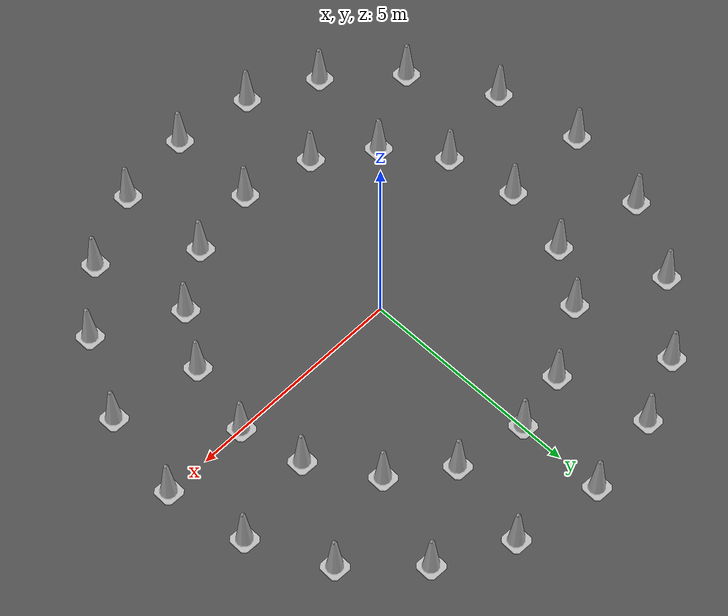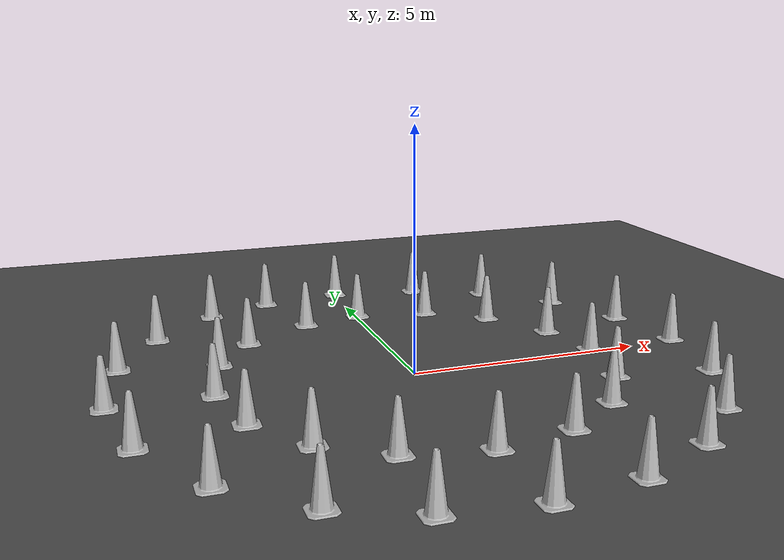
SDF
<sdf version="1.7">
 <world name="default">
  <light name="sun" type="directional">
   <pose>0 0 10 0 -0 0</pose>
   <diffuse>0.8 0.8 0.8 1</diffuse>
   <specular>0.2 0.2 0.2 1</specular>
   <attenuation>
    <range>1000</range>
    <constant>0.9</constant>
    <linear>0.01</linear>
    <quadratic>0.001</quadratic>
   </attenuation>
   <direction>-0.5 0.1 -0.9</direction>
   <spot><inner_angle>0</inner_angle><outer_angle>0</outer_angle><falloff>0</falloff></spot>
  </light>
  <model name="ground_plane">
   <static>1</static>
   <link name="link">
    <collision name="collision">
     <geometry><plane><normal>0 0 1</normal><size>100 100</size></plane></geometry>
     <surface><friction><ode><mu>100</mu><mu2>50</mu2></ode></friction></surface>
    </collision>
    <visual name="visual">
     <cast_shadows>0</cast_shadows>
     <geometry><plane><normal>0 0 1</normal><size>100 100</size></plane></geometry>
     <material>
      <script><uri>file://media/materials/scripts/gazebo.material</uri><name>Gazebo/Grey</name></script>
     </material>
    </visual>
    <velocity_decay><linear>0</linear><angular>0</angular></velocity_decay>
   </link>
  </model>
  <physics type="ode">
   <max_step_size>0.01</max_step_size>
   <real_time_factor>1</real_time_factor>
   <real_time_update_rate>100</real_time_update_rate>
  </physics>
  <scene><ambient>0.4 0.4 0.4 1</ambient><background>0.7 0.7 0.7 1</background><shadows>1</shadows></scene>
  <model name="Construction Cone">
   <link name="link">
    <collision name="collision">
     <geometry>
      <mesh><scale>10 10 10</scale><uri>model://construction_cone/meshes/construction_cone.dae</uri></mesh>
     </geometry>
    </collision>
    <visual name="visual">
     <geometry>
      <mesh><scale>10 10 10</scale><uri>model://construction_cone/meshes/construction_cone.dae</uri></mesh>
     </geometry>
    </visual>
    <velocity_decay><linear>0</linear><angular>0</angular></velocity_decay>
    <inertial>
     <inertia><ixx>1</ixx><ixy>0</ixy><ixz>0</ixz><iyy>1</iyy><iyz>0</iyz><izz>1</izz></inertia>
     <mass>1</mass>
    </inertial>
   </link>
   <pose>0 -6 -0.000979 4e-06 -2e-06 -0.006258</pose>
   <static>0</static>
  </model>
  <model name="Construction Cone_0">
   <link name="link">
    <collision name="collision">
     <geometry>
      <mesh><scale>10 10 10</scale><uri>model://construction_cone/meshes/construction_cone.dae</uri></mesh>
     </geometry>
    </collision>
    <visual name="visual">
     <geometry>
      <mesh><scale>10 10 10</scale><uri>model://construction_cone/meshes/construction_cone.dae</uri></mesh>
     </geometry>
    </visual>
    <velocity_decay><linear>0</linear><angular>0</angular></velocity_decay>
    <inertial>
     <inertia><ixx>1</ixx><ixy>0</ixy><ixz>0</ixz><iyy>1</iyy><iyz>0</iyz><izz>1</izz></inertia>
     <mass>1</mass>
    </inertial>
   </link>
   <pose>-0 6 -0.00088 -0 -0 -0.029485</pose>
   <static>0</static>
  </model>
  <model name="Construction Cone_1">
   <link name="link">
    <collision name="collision">
     <geometry>
      <mesh><scale>10 10 10</scale><uri>model://construction_cone/meshes/construction_cone.dae</uri></mesh>
     </geometry>
    </collision>
    <visual name="visual">
     <geometry>
      <mesh><scale>10 10 10</scale><uri>model://construction_cone/meshes/construction_cone.dae</uri></mesh>
     </geometry>
    </visual>
    <velocity_decay><linear>0</linear><angular>0</angular></velocity_decay>
    <inertial>
     <inertia><ixx>1</ixx><ixy>0</ixy><ixz>0</ixz><iyy>1</iyy><iyz>0</iyz><izz>1</izz></inertia>
     <mass>1</mass>
    </inertial>
   </link>
   <pose>0 -4 -0.000979 4e-06 -2e-06 -0.006258</pose>
   <static>0</static>
  </model>
  <gravity>0 0 -9.8</gravity>
  <magnetic_field>6e-06 2.3e-05 -4.2e-05</magnetic_field>
  <atmosphere type="adiabatic"/>
  <spherical_coordinates>
   <surface_model>EARTH_WGS84</surface_model>
   <latitude_deg>0</latitude_deg>
   <longitude_deg>0</longitude_deg>
   <elevation>0</elevation>
   <heading_deg>0</heading_deg>
  </spherical_coordinates>
  <model name="Construction Cone_0_clone">
   <link name="link">
    <collision name="collision">
     <geometry>
      <mesh><scale>10 10 10</scale><uri>model://construction_cone/meshes/construction_cone.dae</uri></mesh>
     </geometry>
    </collision>
    <visual name="visual">
     <geometry>
      <mesh><scale>10 10 10</scale><uri>model://construction_cone/meshes/construction_cone.dae</uri></mesh>
     </geometry>
    </visual>
    <velocity_decay><linear>0</linear><angular>0</angular></velocity_decay>
    <inertial>
     <inertia><ixx>1</ixx><ixy>0</ixy><ixz>0</ixz><iyy>1</iyy><iyz>0</iyz><izz>1</izz></inertia>
     <mass>1</mass>
    </inertial>
   </link>
   <pose>-0 4 -0 -1e-06 -0 -0.029485</pose>
   <static>0</static>
  </model>
  <model name="Construction Cone_0_clone_0">
   <link name="link">
    <collision name="collision">
     <geometry>
      <mesh><scale>10 10 10</scale><uri>model://construction_cone/meshes/construction_cone.dae</uri></mesh>
     </geometry>
    </collision>
    <visual name="visual">
     <geometry>
      <mesh><scale>10 10 10</scale><uri>model://construction_cone/meshes/construction_cone.dae</uri></mesh>
     </geometry>
    </visual>
    <velocity_decay><linear>0</linear><angular>0</angular></velocity_decay>
    <inertial>
     <inertia><ixx>1</ixx><ixy>0</ixy><ixz>0</ixz><iyy>1</iyy><iyz>0</iyz><izz>1</izz></inertia>
     <mass>1</mass>
    </inertial>
   </link>
   <pose>4 0 -0.00088 -0 -0 -0.029485</pose>
   <static>0</static>
  </model>
  <model name="Construction Cone_0_clone_1">
   <link name="link">
    <collision name="collision">
     <geometry>
      <mesh><scale>10 10 10</scale><uri>model://construction_cone/meshes/construction_cone.dae</uri></mesh>
     </geometry>
    </collision>
    <visual name="visual">
     <geometry>
      <mesh><scale>10 10 10</scale><uri>model://construction_cone/meshes/construction_cone.dae</uri></mesh>
     </geometry>
    </visual>
    <velocity_decay><linear>0</linear><angular>0</angular></velocity_decay>
    <inertial>
     <inertia><ixx>1</ixx><ixy>0</ixy><ixz>0</ixz><iyy>1</iyy><iyz>0</iyz><izz>1</izz></inertia>
     <mass>1</mass>
    </inertial>
   </link>
   <pose>6 -0 -0 -1e-06 -0 -0.029485</pose>
   <static>0</static>
  </model>
  <model name="Construction Cone_0_clone_2">
   <link name="link">
    <collision name="collision">
     <geometry>
      <mesh><scale>10 10 10</scale><uri>model://construction_cone/meshes/construction_cone.dae</uri></mesh>
     </geometry>
    </collision>
    <visual name="visual">
     <geometry>
      <mesh><scale>10 10 10</scale><uri>model://construction_cone/meshes/construction_cone.dae</uri></mesh>
     </geometry>
    </visual>
    <velocity_decay><linear>0</linear><angular>0</angular></velocity_decay>
    <inertial>
     <inertia><ixx>1</ixx><ixy>0</ixy><ixz>0</ixz><iyy>1</iyy><iyz>0</iyz><izz>1</izz></inertia>
     <mass>1</mass>
    </inertial>
   </link>
   <pose>-4 -0 -0 -1e-06 -0 -0.029485</pose>
   <static>0</static>
  </model>
  <model name="Construction Cone_0_clone_3">
   <link name="link">
    <collision name="collision">
     <geometry>
      <mesh><scale>10 10 10</scale><uri>model://construction_cone/meshes/construction_cone.dae</uri></mesh>
     </geometry>
    </collision>
    <visual name="visual">
     <geometry>
      <mesh><scale>10 10 10</scale><uri>model://construction_cone/meshes/construction_cone.dae</uri></mesh>
     </geometry>
    </visual>
    <velocity_decay><linear>0</linear><angular>0</angular></velocity_decay>
    <inertial>
     <inertia><ixx>1</ixx><ixy>0</ixy><ixz>0</ixz><iyy>1</iyy><iyz>0</iyz><izz>1</izz></inertia>
     <mass>1</mass>
    </inertial>
   </link>
   <pose>-6 -0 -0 -1e-06 -0 -0.029485</pose>
   <static>0</static>
  </model>
  <model name="Construction Cone_0_clone_clone">
   <link name="link">
    <collision name="collision">
     <geometry>
      <mesh><scale>10 10 10</scale><uri>model://construction_cone/meshes/construction_cone.dae</uri></mesh>
     </geometry>
    </collision>
    <visual name="visual">
     <geometry>
      <mesh><scale>10 10 10</scale><uri>model://construction_cone/meshes/construction_cone.dae</uri></mesh>
     </geometry>
    </visual>
    <velocity_decay><linear>0</linear><angular>0</angular></velocity_decay>
    <inertial>
     <inertia><ixx>1</ixx><ixy>0</ixy><ixz>0</ixz><iyy>1</iyy><iyz>0</iyz><izz>1</izz></inertia>
     <mass>1</mass>
    </inertial>
   </link>
   <pose>-1.32091 3.71075 0 -0 -0 -0.029485</pose>
   <static>0</static>
  </model>
  <model name="Construction Cone_0_clone_0_clone">
   <link name="link">
    <collision name="collision">
     <geometry>
      <mesh><scale>10 10 10</scale><uri>model://construction_cone/meshes/construction_cone.dae</uri></mesh>
     </geometry>
    </collision>
    <visual name="visual">
     <geometry>
      <mesh><scale>10 10 10</scale><uri>model://construction_cone/meshes/construction_cone.dae</uri></mesh>
     </geometry>
    </visual>
    <velocity_decay><linear>0</linear><angular>0</angular></velocity_decay>
    <inertial>
     <inertia><ixx>1</ixx><ixy>0</ixy><ixz>0</ixz><iyy>1</iyy><iyz>0</iyz><izz>1</izz></inertia>
     <mass>1</mass>
    </inertial>
   </link>
   <pose>1.59539 -3.69535 0 0 0 -0.029485</pose>
   <static>0</static>
  </model>
  <model name="Construction Cone_0_clone_0_clone_0">
   <link name="link">
    <collision name="collision">
     <geometry>
      <mesh><scale>10 10 10</scale><uri>model://construction_cone/meshes/construction_cone.dae</uri></mesh>
     </geometry>
    </collision>
    <visual name="visual">
     <geometry>
      <mesh><scale>10 10 10</scale><uri>model://construction_cone/meshes/construction_cone.dae</uri></mesh>
     </geometry>
    </visual>
    <velocity_decay><linear>0</linear><angular>0</angular></velocity_decay>
    <inertial>
     <inertia><ixx>1</ixx><ixy>0</ixy><ixz>0</ixz><iyy>1</iyy><iyz>0</iyz><izz>1</izz></inertia>
     <mass>1</mass>
    </inertial>
   </link>
   <pose>2.85102 -2.82608 0 0 0 -0.029485</pose>
   <static>0</static>
  </model>
  <model name="Construction Cone_0_clone_0_clone_1">
   <link name="link">
    <collision name="collision">
     <geometry>
      <mesh><scale>10 10 10</scale><uri>model://construction_cone/meshes/construction_cone.dae</uri></mesh>
     </geometry>
    </collision>
    <visual name="visual">
     <geometry>
      <mesh><scale>10 10 10</scale><uri>model://construction_cone/meshes/construction_cone.dae</uri></mesh>
     </geometry>
    </visual>
    <velocity_decay><linear>0</linear><angular>0</angular></velocity_decay>
    <inertial>
     <inertia><ixx>1</ixx><ixy>0</ixy><ixz>0</ixz><iyy>1</iyy><iyz>0</iyz><izz>1</izz></inertia>
     <mass>1</mass>
    </inertial>
   </link>
   <pose>3.63598 -1.64526 0 0 0 -0.029485</pose>
   <static>0</static>
  </model>
  <model name="Construction Cone_0_clone_0_clone_clone">
   <link name="link">
    <collision name="collision">
     <geometry>
      <mesh><scale>10 10 10</scale><uri>model://construction_cone/meshes/construction_cone.dae</uri></mesh>
     </geometry>
    </collision>
    <visual name="visual">
     <geometry>
      <mesh><scale>10 10 10</scale><uri>model://construction_cone/meshes/construction_cone.dae</uri></mesh>
     </geometry>
    </visual>
    <velocity_decay><linear>0</linear><angular>0</angular></velocity_decay>
    <inertial>
     <inertia><ixx>1</ixx><ixy>0</ixy><ixz>0</ixz><iyy>1</iyy><iyz>0</iyz><izz>1</izz></inertia>
     <mass>1</mass>
    </inertial>
   </link>
   <pose>-1.61128 -3.65758 0 0 0 -0.029485</pose>
   <static>0</static>
  </model>
  <model name="Construction Cone_0_clone_0_clone_clone_0">
   <link name="link">
    <collision name="collision">
     <geometry>
      <mesh><scale>10 10 10</scale><uri>model://construction_cone/meshes/construction_cone.dae</uri></mesh>
     </geometry>
    </collision>
    <visual name="visual">
     <geometry>
      <mesh><scale>10 10 10</scale><uri>model://construction_cone/meshes/construction_cone.dae</uri></mesh>
     </geometry>
    </visual>
    <velocity_decay><linear>0</linear><angular>0</angular></velocity_decay>
    <inertial>
     <inertia><ixx>1</ixx><ixy>0</ixy><ixz>0</ixz><iyy>1</iyy><iyz>0</iyz><izz>1</izz></inertia>
     <mass>1</mass>
    </inertial>
   </link>
   <pose>-2.82854 -2.83041 0 0 0 -0.029485</pose>
   <static>0</static>
  </model>
  <model name="Construction Cone_0_clone_0_clone_clone_1">
   <link name="link">
    <collision name="collision">
     <geometry>
      <mesh><scale>10 10 10</scale><uri>model://construction_cone/meshes/construction_cone.dae</uri></mesh>
     </geometry>
    </collision>
    <visual name="visual">
     <geometry>
      <mesh><scale>10 10 10</scale><uri>model://construction_cone/meshes/construction_cone.dae</uri></mesh>
     </geometry>
    </visual>
    <velocity_decay><linear>0</linear><angular>0</angular></velocity_decay>
    <inertial>
     <inertia><ixx>1</ixx><ixy>0</ixy><ixz>0</ixz><iyy>1</iyy><iyz>0</iyz><izz>1</izz></inertia>
     <mass>1</mass>
    </inertial>
   </link>
   <pose>-3.69292 -1.56979 0 0 0 -0.029485</pose>
   <static>0</static>
  </model>
  <model name="Construction Cone_0_clone_0_clone_clone_2">
   <link name="link">
    <collision name="collision">
     <geometry>
      <mesh><scale>10 10 10</scale><uri>model://construction_cone/meshes/construction_cone.dae</uri></mesh>
     </geometry>
    </collision>
    <visual name="visual">
     <geometry>
      <mesh><scale>10 10 10</scale><uri>model://construction_cone/meshes/construction_cone.dae</uri></mesh>
     </geometry>
    </visual>
    <velocity_decay><linear>0</linear><angular>0</angular></velocity_decay>
    <inertial>
     <inertia><ixx>1</ixx><ixy>0</ixy><ixz>0</ixz><iyy>1</iyy><iyz>0</iyz><izz>1</izz></inertia>
     <mass>1</mass>
    </inertial>
   </link>
   <pose>3.68 1.41108 0 0 0 -0.029485</pose>
   <static>0</static>
  </model>
  <model name="Construction Cone_0_clone_0_clone_clone_3">
   <link name="link">
    <collision name="collision">
     <geometry>
      <mesh><scale>10 10 10</scale><uri>model://construction_cone/meshes/construction_cone.dae</uri></mesh>
     </geometry>
    </collision>
    <visual name="visual">
     <geometry>
      <mesh><scale>10 10 10</scale><uri>model://construction_cone/meshes/construction_cone.dae</uri></mesh>
     </geometry>
    </visual>
    <velocity_decay><linear>0</linear><angular>0</angular></velocity_decay>
    <inertial>
     <inertia><ixx>1</ixx><ixy>0</ixy><ixz>0</ixz><iyy>1</iyy><iyz>0</iyz><izz>1</izz></inertia>
     <mass>1</mass>
    </inertial>
   </link>
   <pose>2.81103 2.81541 0 0 0 -0.029485</pose>
   <static>0</static>
  </model>
  <model name="Construction Cone_0_clone_0_clone_clone_4">
   <link name="link">
    <collision name="collision">
     <geometry>
      <mesh><scale>10 10 10</scale><uri>model://construction_cone/meshes/construction_cone.dae</uri></mesh>
     </geometry>
    </collision>
    <visual name="visual">
     <geometry>
      <mesh><scale>10 10 10</scale><uri>model://construction_cone/meshes/construction_cone.dae</uri></mesh>
     </geometry>
    </visual>
    <velocity_decay><linear>0</linear><angular>0</angular></velocity_decay>
    <inertial>
     <inertia><ixx>1</ixx><ixy>0</ixy><ixz>0</ixz><iyy>1</iyy><iyz>0</iyz><izz>1</izz></inertia>
     <mass>1</mass>
    </inertial>
   </link>
   <pose>1.58972 3.70085 0 0 0 -0.029485</pose>
   <static>0</static>
  </model>
  <model name="Construction Cone_0_clone_0_clone_clone_5">
   <link name="link">
    <collision name="collision">
     <geometry>
      <mesh><scale>10 10 10</scale><uri>model://construction_cone/meshes/construction_cone.dae</uri></mesh>
     </geometry>
    </collision>
    <visual name="visual">
     <geometry>
      <mesh><scale>10 10 10</scale><uri>model://construction_cone/meshes/construction_cone.dae</uri></mesh>
     </geometry>
    </visual>
    <velocity_decay><linear>0</linear><angular>0</angular></velocity_decay>
    <inertial>
     <inertia><ixx>1</ixx><ixy>0</ixy><ixz>0</ixz><iyy>1</iyy><iyz>0</iyz><izz>1</izz></inertia>
     <mass>1</mass>
    </inertial>
   </link>
   <pose>-2.82445 2.82029 0 0 0 -0.029485</pose>
   <static>0</static>
  </model>
  <model name="Construction Cone_0_clone_0_clone_clone_6">
   <link name="link">
    <collision name="collision">
     <geometry>
      <mesh><scale>10 10 10</scale><uri>model://construction_cone/meshes/construction_cone.dae</uri></mesh>
     </geometry>
    </collision>
    <visual name="visual">
     <geometry>
      <mesh><scale>10 10 10</scale><uri>model://construction_cone/meshes/construction_cone.dae</uri></mesh>
     </geometry>
    </visual>
    <velocity_decay><linear>0</linear><angular>0</angular></velocity_decay>
    <inertial>
     <inertia><ixx>1</ixx><ixy>0</ixy><ixz>0</ixz><iyy>1</iyy><iyz>0</iyz><izz>1</izz></inertia>
     <mass>1</mass>
    </inertial>
   </link>
   <pose>-3.65076 1.6269 0 0 0 -0.029485</pose>
   <static>0</static>
  </model>
  <model name="Construction Cone_clone">
   <link name="link">
    <collision name="collision">
     <geometry>
      <mesh><scale>10 10 10</scale><uri>model://construction_cone/meshes/construction_cone.dae</uri></mesh>
     </geometry>
    </collision>
    <visual name="visual">
     <geometry>
      <mesh><scale>10 10 10</scale><uri>model://construction_cone/meshes/construction_cone.dae</uri></mesh>
     </geometry>
    </visual>
    <velocity_decay><linear>0</linear><angular>0</angular></velocity_decay>
    <inertial>
     <inertia><ixx>1</ixx><ixy>0</ixy><ixz>0</ixz><iyy>1</iyy><iyz>0</iyz><izz>1</izz></inertia>
     <mass>1</mass>
    </inertial>
   </link>
   <pose>1.75136 -5.74929 -0.000979 4e-06 -2e-06 -0.006258</pose>
   <static>0</static>
  </model>
  <model name="Construction Cone_clone_0">
   <link name="link">
    <collision name="collision">
     <geometry>
      <mesh><scale>10 10 10</scale><uri>model://construction_cone/meshes/construction_cone.dae</uri></mesh>
     </geometry>
    </collision>
    <visual name="visual">
     <geometry>
      <mesh><scale>10 10 10</scale><uri>model://construction_cone/meshes/construction_cone.dae</uri></mesh>
     </geometry>
    </visual>
    <velocity_decay><linear>0</linear><angular>0</angular></velocity_decay>
    <inertial>
     <inertia><ixx>1</ixx><ixy>0</ixy><ixz>0</ixz><iyy>1</iyy><iyz>0</iyz><izz>1</izz></inertia>
     <mass>1</mass>
    </inertial>
   </link>
   <pose>3.39659 -4.9753 -0.000979 4e-06 -2e-06 -0.006258</pose>
   <static>0</static>
  </model>
  <model name="Construction Cone_clone_1">
   <link name="link">
    <collision name="collision">
     <geometry>
      <mesh><scale>10 10 10</scale><uri>model://construction_cone/meshes/construction_cone.dae</uri></mesh>
     </geometry>
    </collision>
    <visual name="visual">
     <geometry>
      <mesh><scale>10 10 10</scale><uri>model://construction_cone/meshes/construction_cone.dae</uri></mesh>
     </geometry>
    </visual>
    <velocity_decay><linear>0</linear><angular>0</angular></velocity_decay>
    <inertial>
     <inertia><ixx>1</ixx><ixy>0</ixy><ixz>0</ixz><iyy>1</iyy><iyz>0</iyz><izz>1</izz></inertia>
     <mass>1</mass>
    </inertial>
   </link>
   <pose>4.65782 -3.76341 -0.000979 4e-06 -2e-06 -0.006258</pose>
   <static>0</static>
  </model>
  <model name="Construction Cone_clone_2">
   <link name="link">
    <collision name="collision">
     <geometry>
      <mesh><scale>10 10 10</scale><uri>model://construction_cone/meshes/construction_cone.dae</uri></mesh>
     </geometry>
    </collision>
    <visual name="visual">
     <geometry>
      <mesh><scale>10 10 10</scale><uri>model://construction_cone/meshes/construction_cone.dae</uri></mesh>
     </geometry>
    </visual>
    <velocity_decay><linear>0</linear><angular>0</angular></velocity_decay>
    <inertial>
     <inertia><ixx>1</ixx><ixy>0</ixy><ixz>0</ixz><iyy>1</iyy><iyz>0</iyz><izz>1</izz></inertia>
     <mass>1</mass>
    </inertial>
   </link>
   <pose>5.62693 -2.00252 -0.000979 4e-06 -2e-06 -0.006258</pose>
   <static>0</static>
  </model>
  <model name="Construction Cone_clone_3">
   <link name="link">
    <collision name="collision">
     <geometry>
      <mesh><scale>10 10 10</scale><uri>model://construction_cone/meshes/construction_cone.dae</uri></mesh>
     </geometry>
    </collision>
    <visual name="visual">
     <geometry>
      <mesh><scale>10 10 10</scale><uri>model://construction_cone/meshes/construction_cone.dae</uri></mesh>
     </geometry>
    </visual>
    <velocity_decay><linear>0</linear><angular>0</angular></velocity_decay>
    <inertial>
     <inertia><ixx>1</ixx><ixy>0</ixy><ixz>0</ixz><iyy>1</iyy><iyz>0</iyz><izz>1</izz></inertia>
     <mass>1</mass>
    </inertial>
   </link>
   <pose>-1.75759 -5.74926 -0.000979 4e-06 -2e-06 -0.006258</pose>
   <static>0</static>
  </model>
  <model name="Construction Cone_clone_4">
   <link name="link">
    <collision name="collision">
     <geometry>
      <mesh><scale>10 10 10</scale><uri>model://construction_cone/meshes/construction_cone.dae</uri></mesh>
     </geometry>
    </collision>
    <visual name="visual">
     <geometry>
      <mesh><scale>10 10 10</scale><uri>model://construction_cone/meshes/construction_cone.dae</uri></mesh>
     </geometry>
    </visual>
    <velocity_decay><linear>0</linear><angular>0</angular></velocity_decay>
    <inertial>
     <inertia><ixx>1</ixx><ixy>0</ixy><ixz>0</ixz><iyy>1</iyy><iyz>0</iyz><izz>1</izz></inertia>
     <mass>1</mass>
    </inertial>
   </link>
   <pose>-3.25261 -5.03305 -0.000979 4e-06 -2e-06 -0.006258</pose>
   <static>0</static>
  </model>
  <model name="Construction Cone_clone_5">
   <link name="link">
    <collision name="collision">
     <geometry>
      <mesh><scale>10 10 10</scale><uri>model://construction_cone/meshes/construction_cone.dae</uri></mesh>
     </geometry>
    </collision>
    <visual name="visual">
     <geometry>
      <mesh><scale>10 10 10</scale><uri>model://construction_cone/meshes/construction_cone.dae</uri></mesh>
     </geometry>
    </visual>
    <velocity_decay><linear>0</linear><angular>0</angular></velocity_decay>
    <inertial>
     <inertia><ixx>1</ixx><ixy>0</ixy><ixz>0</ixz><iyy>1</iyy><iyz>0</iyz><izz>1</izz></inertia>
     <mass>1</mass>
    </inertial>
   </link>
   <pose>-4.65363 -3.76885 -0.000979 4e-06 -2e-06 -0.006258</pose>
   <static>0</static>
  </model>
  <model name="Construction Cone_clone_6">
   <link name="link">
    <collision name="collision">
     <geometry>
      <mesh><scale>10 10 10</scale><uri>model://construction_cone/meshes/construction_cone.dae</uri></mesh>
     </geometry>
    </collision>
    <visual name="visual">
     <geometry>
      <mesh><scale>10 10 10</scale><uri>model://construction_cone/meshes/construction_cone.dae</uri></mesh>
     </geometry>
    </visual>
    <velocity_decay><linear>0</linear><angular>0</angular></velocity_decay>
    <inertial>
     <inertia><ixx>1</ixx><ixy>0</ixy><ixz>0</ixz><iyy>1</iyy><iyz>0</iyz><izz>1</izz></inertia>
     <mass>1</mass>
    </inertial>
   </link>
   <pose>-5.65409 -1.9623 -0.000979 4e-06 -2e-06 -0.006258</pose>
   <static>0</static>
  </model>
  <model name="Construction Cone_0_clone_3_clone">
   <link name="link">
    <collision name="collision">
     <geometry>
      <mesh><scale>10 10 10</scale><uri>model://construction_cone/meshes/construction_cone.dae</uri></mesh>
     </geometry>
    </collision>
    <visual name="visual">
     <geometry>
      <mesh><scale>10 10 10</scale><uri>model://construction_cone/meshes/construction_cone.dae</uri></mesh>
     </geometry>
    </visual>
    <velocity_decay><linear>0</linear><angular>0</angular></velocity_decay>
    <inertial>
     <inertia><ixx>1</ixx><ixy>0</ixy><ixz>0</ixz><iyy>1</iyy><iyz>0</iyz><izz>1</izz></inertia>
     <mass>1</mass>
    </inertial>
   </link>
   <pose>-5.62713 2.02412 0 -1e-06 -0 -0.029485</pose>
   <static>0</static>
  </model>
  <model name="Construction Cone_0_clone_3_clone_0">
   <link name="link">
    <collision name="collision">
     <geometry>
      <mesh><scale>10 10 10</scale><uri>model://construction_cone/meshes/construction_cone.dae</uri></mesh>
     </geometry>
    </collision>
    <visual name="visual">
     <geometry>
      <mesh><scale>10 10 10</scale><uri>model://construction_cone/meshes/construction_cone.dae</uri></mesh>
     </geometry>
    </visual>
    <velocity_decay><linear>0</linear><angular>0</angular></velocity_decay>
    <inertial>
     <inertia><ixx>1</ixx><ixy>0</ixy><ixz>0</ixz><iyy>1</iyy><iyz>0</iyz><izz>1</izz></inertia>
     <mass>1</mass>
    </inertial>
   </link>
   <pose>-4.6683 3.72324 0 -1e-06 -0 -0.029485</pose>
   <static>0</static>
  </model>
  <model name="Construction Cone_0_clone_3_clone_1">
   <link name="link">
    <collision name="collision">
     <geometry>
      <mesh><scale>10 10 10</scale><uri>model://construction_cone/meshes/construction_cone.dae</uri></mesh>
     </geometry>
    </collision>
    <visual name="visual">
     <geometry>
      <mesh><scale>10 10 10</scale><uri>model://construction_cone/meshes/construction_cone.dae</uri></mesh>
     </geometry>
    </visual>
    <velocity_decay><linear>0</linear><angular>0</angular></velocity_decay>
    <inertial>
     <inertia><ixx>1</ixx><ixy>0</ixy><ixz>0</ixz><iyy>1</iyy><iyz>0</iyz><izz>1</izz></inertia>
     <mass>1</mass>
    </inertial>
   </link>
   <pose>-3.27023 5.09235 0 -1e-06 -0 -0.029485</pose>
   <static>0</static>
  </model>
  <model name="Construction Cone_0_clone_3_clone_2">
   <link name="link">
    <collision name="collision">
     <geometry>
      <mesh><scale>10 10 10</scale><uri>model://construction_cone/meshes/construction_cone.dae</uri></mesh>
     </geometry>
    </collision>
    <visual name="visual">
     <geometry>
      <mesh><scale>10 10 10</scale><uri>model://construction_cone/meshes/construction_cone.dae</uri></mesh>
     </geometry>
    </visual>
    <velocity_decay><linear>0</linear><angular>0</angular></velocity_decay>
    <inertial>
     <inertia><ixx>1</ixx><ixy>0</ixy><ixz>0</ixz><iyy>1</iyy><iyz>0</iyz><izz>1</izz></inertia>
     <mass>1</mass>
    </inertial>
   </link>
   <pose>-1.84172 5.71372 0 -1e-06 -0 -0.029485</pose>
   <static>0</static>
  </model>
  <model name="Construction Cone_0_clone_3_clone_3">
   <link name="link">
    <collision name="collision">
     <geometry>
      <mesh><scale>10 10 10</scale><uri>model://construction_cone/meshes/construction_cone.dae</uri></mesh>
     </geometry>
    </collision>
    <visual name="visual">
     <geometry>
      <mesh><scale>10 10 10</scale><uri>model://construction_cone/meshes/construction_cone.dae</uri></mesh>
     </geometry>
    </visual>
    <velocity_decay><linear>0</linear><angular>0</angular></velocity_decay>
    <inertial>
     <inertia><ixx>1</ixx><ixy>0</ixy><ixz>0</ixz><iyy>1</iyy><iyz>0</iyz><izz>1</izz></inertia>
     <mass>1</mass>
    </inertial>
   </link>
   <pose>1.97845 5.65421 0 -1e-06 -0 -0.029485</pose>
   <static>0</static>
  </model>
  <model name="Construction Cone_0_clone_3_clone_4">
   <link name="link">
    <collision name="collision">
     <geometry>
      <mesh><scale>10 10 10</scale><uri>model://construction_cone/meshes/construction_cone.dae</uri></mesh>
     </geometry>
    </collision>
    <visual name="visual">
     <geometry>
      <mesh><scale>10 10 10</scale><uri>model://construction_cone/meshes/construction_cone.dae</uri></mesh>
     </geometry>
    </visual>
    <velocity_decay><linear>0</linear><angular>0</angular></velocity_decay>
    <inertial>
     <inertia><ixx>1</ixx><ixy>0</ixy><ixz>0</ixz><iyy>1</iyy><iyz>0</iyz><izz>1</izz></inertia>
     <mass>1</mass>
    </inertial>
   </link>
   <pose>3.55594 4.85416 0 -1e-06 -0 -0.029485</pose>
   <static>0</static>
  </model>
  <model name="Construction Cone_0_clone_3_clone_5">
   <link name="link">
    <collision name="collision">
     <geometry>
      <mesh><scale>10 10 10</scale><uri>model://construction_cone/meshes/construction_cone.dae</uri></mesh>
     </geometry>
    </collision>
    <visual name="visual">
     <geometry>
      <mesh><scale>10 10 10</scale><uri>model://construction_cone/meshes/construction_cone.dae</uri></mesh>
     </geometry>
    </visual>
    <velocity_decay><linear>0</linear><angular>0</angular></velocity_decay>
    <inertial>
     <inertia><ixx>1</ixx><ixy>0</ixy><ixz>0</ixz><iyy>1</iyy><iyz>0</iyz><izz>1</izz></inertia>
     <mass>1</mass>
    </inertial>
   </link>
   <pose>4.87904 3.52208 0 -1e-06 -0 -0.029485</pose>
   <static>0</static>
  </model>
  <model name="Construction Cone_0_clone_3_clone_6">
   <link name="link">
    <collision name="collision">
     <geometry>
      <mesh><scale>10 10 10</scale><uri>model://construction_cone/meshes/construction_cone.dae</uri></mesh>
     </geometry>
    </collision>
    <visual name="visual">
     <geometry>
      <mesh><scale>10 10 10</scale><uri>model://construction_cone/meshes/construction_cone.dae</uri></mesh>
     </geometry>
    </visual>
    <velocity_decay><linear>0</linear><angular>0</angular></velocity_decay>
    <inertial>
     <inertia><ixx>1</ixx><ixy>0</ixy><ixz>0</ixz><iyy>1</iyy><iyz>0</iyz><izz>1</izz></inertia>
     <mass>1</mass>
    </inertial>
   </link>
   <pose>5.69182 1.83289 0 -1e-06 -0 -0.029485</pose>
   <static>0</static>
  </model>
  <model name="big_asphalt_plane">
   <static>1</static>
   <link name="link">
    <collision name="collision"><geometry><box><size>50 50 0.1</size></box></geometry></collision>
    <visual name="visual">
     <cast_shadows>0</cast_shadows>
     <geometry><box><size>50 50 0.1</size></box></geometry>
     <material>
      <script>
       <uri>model://big_asphalt_plane/materials/scripts</uri>
       <uri>model://big_asphalt_plane/materials/textures</uri>
       <name>vrc/asphalt</name>
      </script>
     </material>
    </visual>
   </link>
   <pose>-3.11131 2.07361 0 0 -0 0</pose>
  </model>
 </world>
</sdf>
